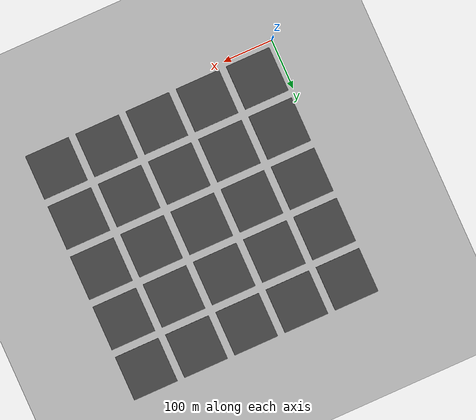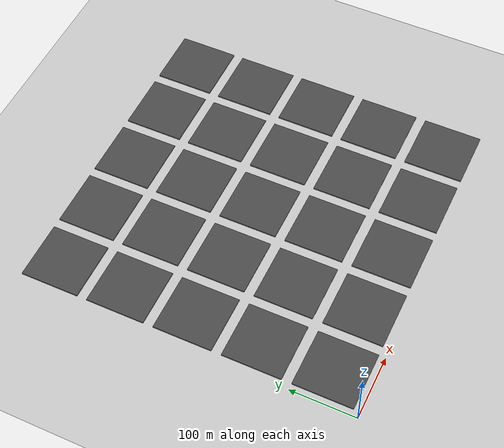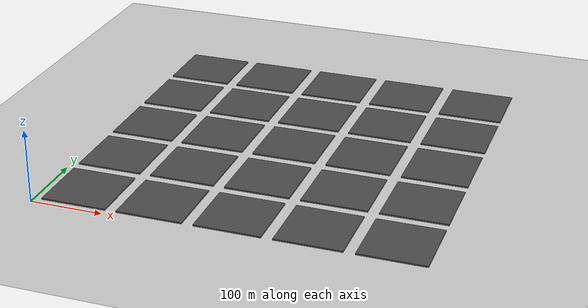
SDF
<sdf version="1.5">
 <world name="default">
  <include><uri>models/ground_plane</uri></include>
  <include><uri>model://sun</uri></include>
  <model name="asphalt_plane_0_0">
   <pose>55 55 0 0 0 0</pose>
   <static>true</static>
   <link name="link">
    <collision name="collision"><geometry><box><size>90 90 3</size></box></geometry></collision>
    <visual name="visual">
     <cast_shadows>false</cast_shadows>
     <geometry><box><size>90 90 3</size></box></geometry>
     <material>
      <script>
       <uri>models/asphalt_plane/materials/scripts</uri>
       <uri>models/asphalt_plane/materials/textures</uri>
       <name>vrc/asphalt</name>
      </script>
     </material>
    </visual>
   </link>
  </model>
  <model name="asphalt_plane_1_0">
   <pose>160 55 0 0 0 0</pose>
   <static>true</static>
   <link name="link">
    <collision name="collision"><geometry><box><size>90 90 3</size></box></geometry></collision>
    <visual name="visual">
     <cast_shadows>false</cast_shadows>
     <geometry><box><size>90 90 3</size></box></geometry>
     <material>
      <script>
       <uri>models/asphalt_plane/materials/scripts</uri>
       <uri>models/asphalt_plane/materials/textures</uri>
       <name>vrc/asphalt</name>
      </script>
     </material>
    </visual>
   </link>
  </model>
  <model name="asphalt_plane_2_0">
   <pose>265 55 0 0 0 0</pose>
   <static>true</static>
   <link name="link">
    <collision name="collision"><geometry><box><size>90 90 3</size></box></geometry></collision>
    <visual name="visual">
     <cast_shadows>false</cast_shadows>
     <geometry><box><size>90 90 3</size></box></geometry>
     <material>
      <script>
       <uri>models/asphalt_plane/materials/scripts</uri>
       <uri>models/asphalt_plane/materials/textures</uri>
       <name>vrc/asphalt</name>
      </script>
     </material>
    </visual>
   </link>
  </model>
  <model name="asphalt_plane_3_0">
   <pose>370 55 0 0 0 0</pose>
   <static>true</static>
   <link name="link">
    <collision name="collision"><geometry><box><size>90 90 3</size></box></geometry></collision>
    <visual name="visual">
     <cast_shadows>false</cast_shadows>
     <geometry><box><size>90 90 3</size></box></geometry>
     <material>
      <script>
       <uri>models/asphalt_plane/materials/scripts</uri>
       <uri>models/asphalt_plane/materials/textures</uri>
       <name>vrc/asphalt</name>
      </script>
     </material>
    </visual>
   </link>
  </model>
  <model name="asphalt_plane_4_0">
   <pose>475 55 0 0 0 0</pose>
   <static>true</static>
   <link name="link">
    <collision name="collision"><geometry><box><size>90 90 3</size></box></geometry></collision>
    <visual name="visual">
     <cast_shadows>false</cast_shadows>
     <geometry><box><size>90 90 3</size></box></geometry>
     <material>
      <script>
       <uri>models/asphalt_plane/materials/scripts</uri>
       <uri>models/asphalt_plane/materials/textures</uri>
       <name>vrc/asphalt</name>
      </script>
     </material>
    </visual>
   </link>
  </model>
  <model name="asphalt_plane_0_1">
   <pose>55 160 0 0 0 0</pose>
   <static>true</static>
   <link name="link">
    <collision name="collision"><geometry><box><size>90 90 3</size></box></geometry></collision>
    <visual name="visual">
     <cast_shadows>false</cast_shadows>
     <geometry><box><size>90 90 3</size></box></geometry>
     <material>
      <script>
       <uri>models/asphalt_plane/materials/scripts</uri>
       <uri>models/asphalt_plane/materials/textures</uri>
       <name>vrc/asphalt</name>
      </script>
     </material>
    </visual>
   </link>
  </model>
  <model name="asphalt_plane_1_1">
   <pose>160 160 0 0 0 0</pose>
   <static>true</static>
   <link name="link">
    <collision name="collision"><geometry><box><size>90 90 3</size></box></geometry></collision>
    <visual name="visual">
     <cast_shadows>false</cast_shadows>
     <geometry><box><size>90 90 3</size></box></geometry>
     <material>
      <script>
       <uri>models/asphalt_plane/materials/scripts</uri>
       <uri>models/asphalt_plane/materials/textures</uri>
       <name>vrc/asphalt</name>
      </script>
     </material>
    </visual>
   </link>
  </model>
  <model name="asphalt_plane_2_1">
   <pose>265 160 0 0 0 0</pose>
   <static>true</static>
   <link name="link">
    <collision name="collision"><geometry><box><size>90 90 3</size></box></geometry></collision>
    <visual name="visual">
     <cast_shadows>false</cast_shadows>
     <geometry><box><size>90 90 3</size></box></geometry>
     <material>
      <script>
       <uri>models/asphalt_plane/materials/scripts</uri>
       <uri>models/asphalt_plane/materials/textures</uri>
       <name>vrc/asphalt</name>
      </script>
     </material>
    </visual>
   </link>
  </model>
  <model name="asphalt_plane_3_1">
   <pose>370 160 0 0 0 0</pose>
   <static>true</static>
   <link name="link">
    <collision name="collision"><geometry><box><size>90 90 3</size></box></geometry></collision>
    <visual name="visual">
     <cast_shadows>false</cast_shadows>
     <geometry><box><size>90 90 3</size></box></geometry>
     <material>
      <script>
       <uri>models/asphalt_plane/materials/scripts</uri>
       <uri>models/asphalt_plane/materials/textures</uri>
       <name>vrc/asphalt</name>
      </script>
     </material>
    </visual>
   </link>
  </model>
  <model name="asphalt_plane_4_1">
   <pose>475 160 0 0 0 0</pose>
   <static>true</static>
   <link name="link">
    <collision name="collision"><geometry><box><size>90 90 3</size></box></geometry></collision>
    <visual name="visual">
     <cast_shadows>false</cast_shadows>
     <geometry><box><size>90 90 3</size></box></geometry>
     <material>
      <script>
       <uri>models/asphalt_plane/materials/scripts</uri>
       <uri>models/asphalt_plane/materials/textures</uri>
       <name>vrc/asphalt</name>
      </script>
     </material>
    </visual>
   </link>
  </model>
  <model name="asphalt_plane_0_2">
   <pose>55 265 0 0 0 0</pose>
   <static>true</static>
   <link name="link">
    <collision name="collision"><geometry><box><size>90 90 3</size></box></geometry></collision>
    <visual name="visual">
     <cast_shadows>false</cast_shadows>
     <geometry><box><size>90 90 3</size></box></geometry>
     <material>
      <script>
       <uri>models/asphalt_plane/materials/scripts</uri>
       <uri>models/asphalt_plane/materials/textures</uri>
       <name>vrc/asphalt</name>
      </script>
     </material>
    </visual>
   </link>
  </model>
  <model name="asphalt_plane_1_2">
   <pose>160 265 0 0 0 0</pose>
   <static>true</static>
   <link name="link">
    <collision name="collision"><geometry><box><size>90 90 3</size></box></geometry></collision>
    <visual name="visual">
     <cast_shadows>false</cast_shadows>
     <geometry><box><size>90 90 3</size></box></geometry>
     <material>
      <script>
       <uri>models/asphalt_plane/materials/scripts</uri>
       <uri>models/asphalt_plane/materials/textures</uri>
       <name>vrc/asphalt</name>
      </script>
     </material>
    </visual>
   </link>
  </model>
  <model name="asphalt_plane_2_2">
   <pose>265 265 0 0 0 0</pose>
   <static>true</static>
   <link name="link">
    <collision name="collision"><geometry><box><size>90 90 3</size></box></geometry></collision>
    <visual name="visual">
     <cast_shadows>false</cast_shadows>
     <geometry><box><size>90 90 3</size></box></geometry>
     <material>
      <script>
       <uri>models/asphalt_plane/materials/scripts</uri>
       <uri>models/asphalt_plane/materials/textures</uri>
       <name>vrc/asphalt</name>
      </script>
     </material>
    </visual>
   </link>
  </model>
  <model name="asphalt_plane_3_2">
   <pose>370 265 0 0 0 0</pose>
   <static>true</static>
   <link name="link">
    <collision name="collision"><geometry><box><size>90 90 3</size></box></geometry></collision>
    <visual name="visual">
     <cast_shadows>false</cast_shadows>
     <geometry><box><size>90 90 3</size></box></geometry>
     <material>
      <script>
       <uri>models/asphalt_plane/materials/scripts</uri>
       <uri>models/asphalt_plane/materials/textures</uri>
       <name>vrc/asphalt</name>
      </script>
     </material>
    </visual>
   </link>
  </model>
  <model name="asphalt_plane_4_2">
   <pose>475 265 0 0 0 0</pose>
   <static>true</static>
   <link name="link">
    <collision name="collision"><geometry><box><size>90 90 3</size></box></geometry></collision>
    <visual name="visual">
     <cast_shadows>false</cast_shadows>
     <geometry><box><size>90 90 3</size></box></geometry>
     <material>
      <script>
       <uri>models/asphalt_plane/materials/scripts</uri>
       <uri>models/asphalt_plane/materials/textures</uri>
       <name>vrc/asphalt</name>
      </script>
     </material>
    </visual>
   </link>
  </model>
  <model name="asphalt_plane_0_3">
   <pose>55 370 0 0 0 0</pose>
   <static>true</static>
   <link name="link">
    <collision name="collision"><geometry><box><size>90 90 3</size></box></geometry></collision>
    <visual name="visual">
     <cast_shadows>false</cast_shadows>
     <geometry><box><size>90 90 3</size></box></geometry>
     <material>
      <script>
       <uri>models/asphalt_plane/materials/scripts</uri>
       <uri>models/asphalt_plane/materials/textures</uri>
       <name>vrc/asphalt</name>
      </script>
     </material>
    </visual>
   </link>
  </model>
  <model name="asphalt_plane_1_3">
   <pose>160 370 0 0 0 0</pose>
   <static>true</static>
   <link name="link">
    <collision name="collision"><geometry><box><size>90 90 3</size></box></geometry></collision>
    <visual name="visual">
     <cast_shadows>false</cast_shadows>
     <geometry><box><size>90 90 3</size></box></geometry>
     <material>
      <script>
       <uri>models/asphalt_plane/materials/scripts</uri>
       <uri>models/asphalt_plane/materials/textures</uri>
       <name>vrc/asphalt</name>
      </script>
     </material>
    </visual>
   </link>
  </model>
  <model name="asphalt_plane_2_3">
   <pose>265 370 0 0 0 0</pose>
   <static>true</static>
   <link name="link">
    <collision name="collision"><geometry><box><size>90 90 3</size></box></geometry></collision>
    <visual name="visual">
     <cast_shadows>false</cast_shadows>
     <geometry><box><size>90 90 3</size></box></geometry>
     <material>
      <script>
       <uri>models/asphalt_plane/materials/scripts</uri>
       <uri>models/asphalt_plane/materials/textures</uri>
       <name>vrc/asphalt</name>
      </script>
     </material>
    </visual>
   </link>
  </model>
  <model name="asphalt_plane_3_3">
   <pose>370 370 0 0 0 0</pose>
   <static>true</static>
   <link name="link">
    <collision name="collision"><geometry><box><size>90 90 3</size></box></geometry></collision>
    <visual name="visual">
     <cast_shadows>false</cast_shadows>
     <geometry><box><size>90 90 3</size></box></geometry>
     <material>
      <script>
       <uri>models/asphalt_plane/materials/scripts</uri>
       <uri>models/asphalt_plane/materials/textures</uri>
       <name>vrc/asphalt</name>
      </script>
     </material>
    </visual>
   </link>
  </model>
  <model name="asphalt_plane_4_3">
   <pose>475 370 0 0 0 0</pose>
   <static>true</static>
   <link name="link">
    <collision name="collision"><geometry><box><size>90 90 3</size></box></geometry></collision>
    <visual name="visual">
     <cast_shadows>false</cast_shadows>
     <geometry><box><size>90 90 3</size></box></geometry>
     <material>
      <script>
       <uri>models/asphalt_plane/materials/scripts</uri>
       <uri>models/asphalt_plane/materials/textures</uri>
       <name>vrc/asphalt</name>
      </script>
     </material>
    </visual>
   </link>
  </model>
  <model name="asphalt_plane_0_4">
   <pose>55 475 0 0 0 0</pose>
   <static>true</static>
   <link name="link">
    <collision name="collision"><geometry><box><size>90 90 3</size></box></geometry></collision>
    <visual name="visual">
     <cast_shadows>false</cast_shadows>
     <geometry><box><size>90 90 3</size></box></geometry>
     <material>
      <script>
       <uri>models/asphalt_plane/materials/scripts</uri>
       <uri>models/asphalt_plane/materials/textures</uri>
       <name>vrc/asphalt</name>
      </script>
     </material>
    </visual>
   </link>
  </model>
  <model name="asphalt_plane_1_4">
   <pose>160 475 0 0 0 0</pose>
   <static>true</static>
   <link name="link">
    <collision name="collision"><geometry><box><size>90 90 3</size></box></geometry></collision>
    <visual name="visual">
     <cast_shadows>false</cast_shadows>
     <geometry><box><size>90 90 3</size></box></geometry>
     <material>
      <script>
       <uri>models/asphalt_plane/materials/scripts</uri>
       <uri>models/asphalt_plane/materials/textures</uri>
       <name>vrc/asphalt</name>
      </script>
     </material>
    </visual>
   </link>
  </model>
  <model name="asphalt_plane_2_4">
   <pose>265 475 0 0 0 0</pose>
   <static>true</static>
   <link name="link">
    <collision name="collision"><geometry><box><size>90 90 3</size></box></geometry></collision>
    <visual name="visual">
     <cast_shadows>false</cast_shadows>
     <geometry><box><size>90 90 3</size></box></geometry>
     <material>
      <script>
       <uri>models/asphalt_plane/materials/scripts</uri>
       <uri>models/asphalt_plane/materials/textures</uri>
       <name>vrc/asphalt</name>
      </script>
     </material>
    </visual>
   </link>
  </model>
  <model name="asphalt_plane_3_4">
   <pose>370 475 0 0 0 0</pose>
   <static>true</static>
   <link name="link">
    <collision name="collision"><geometry><box><size>90 90 3</size></box></geometry></collision>
    <visual name="visual">
     <cast_shadows>false</cast_shadows>
     <geometry><box><size>90 90 3</size></box></geometry>
     <material>
      <script>
       <uri>models/asphalt_plane/materials/scripts</uri>
       <uri>models/asphalt_plane/materials/textures</uri>
       <name>vrc/asphalt</name>
      </script>
     </material>
    </visual>
   </link>
  </model>
  <model name="asphalt_plane_4_4">
   <pose>475 475 0 0 0 0</pose>
   <static>true</static>
   <link name="link">
    <collision name="collision"><geometry><box><size>90 90 3</size></box></geometry></collision>
    <visual name="visual">
     <cast_shadows>false</cast_shadows>
     <geometry><box><size>90 90 3</size></box></geometry>
     <material>
      <script>
       <uri>models/asphalt_plane/materials/scripts</uri>
       <uri>models/asphalt_plane/materials/textures</uri>
       <name>vrc/asphalt</name>
      </script>
     </material>
    </visual>
   </link>
  </model>
 </world>
</sdf>
